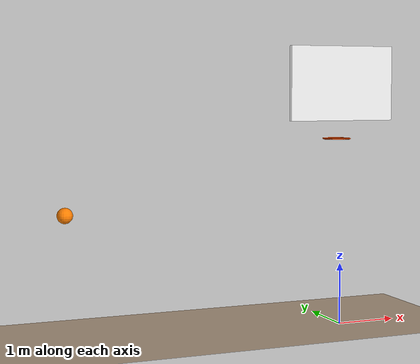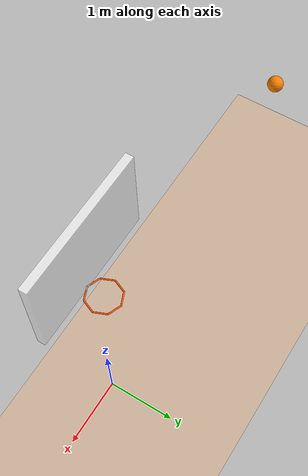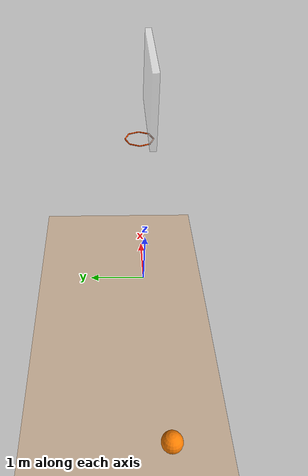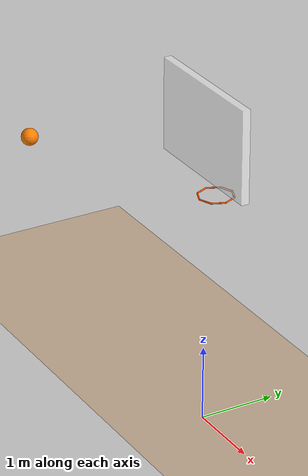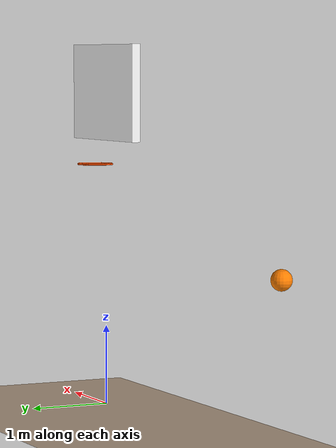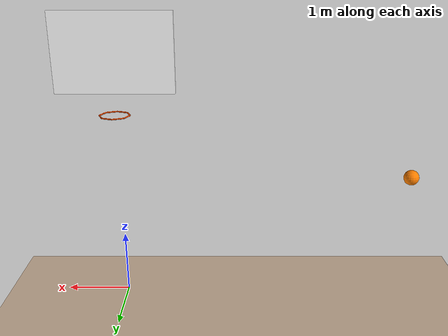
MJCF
<mujoco model="basketball_freethrow">
    <!-- Physics settings: 1ms timestep, RK4 for energy conservation -->
    <option gravity="0 0 -9.81" timestep="0.001" integrator="RK4">
        <flag contact="enable"/>
    </option>

    <compiler angle="degree" coordinate="local"/>

    <!-- Default contact parameters -->
    <default>
        <geom condim="4" friction="0.6 0.02 0.01" solref="0.02 1" solimp="0.9 0.95 0.001"/>
    </default>

    <worldbody>
        <!-- Ground plane -->
        <geom name="floor" type="plane" size="20 20 0.1" rgba="0.8 0.7 0.6 1"/>

        <!-- Backboard -->
        <body name="backboard" pos="0 0 3.95">
            <geom name="backboard" type="box" size="0.9 0.05 0.6" rgba="1 1 1 0.8"/>
        </body>

        <!-- Rim (modeled as 8 capsule segments for accurate collision) -->
        <!-- Rim center is 15cm forward of backboard, at 3.05m (10 feet) height -->
        <body name="rim" pos="0 0.15 3.05">
            <!-- 8 segments forming a circle, radius 0.2286m (9 inches) -->
            <geom name="rim_1" type="capsule" size="0.01" fromto="0.229 0 0 0.162 0.162 0" rgba="1 0.3 0 1" friction="0.8"/>
            <geom name="rim_2" type="capsule" size="0.01" fromto="0.162 0.162 0 0 0.229 0" rgba="1 0.3 0 1" friction="0.8"/>
            <geom name="rim_3" type="capsule" size="0.01" fromto="0 0.229 0 -0.162 0.162 0" rgba="1 0.3 0 1" friction="0.8"/>
            <geom name="rim_4" type="capsule" size="0.01" fromto="-0.162 0.162 0 -0.229 0 0" rgba="1 0.3 0 1" friction="0.8"/>
            <geom name="rim_5" type="capsule" size="0.01" fromto="-0.229 0 0 -0.162 -0.162 0" rgba="1 0.3 0 1" friction="0.8"/>
            <geom name="rim_6" type="capsule" size="0.01" fromto="-0.162 -0.162 0 0 -0.229 0" rgba="1 0.3 0 1" friction="0.8"/>
            <geom name="rim_7" type="capsule" size="0.01" fromto="0 -0.229 0 0.162 -0.162 0" rgba="1 0.3 0 1" friction="0.8"/>
            <geom name="rim_8" type="capsule" size="0.01" fromto="0.162 -0.162 0 0.229 0 0" rgba="1 0.3 0 1" friction="0.8"/>
        </body>

        <!-- Basketball with free joint (6 DOF: translation + rotation) -->
        <!-- Initial position at free throw line (4.57m from hoop) -->
        <body name="ball" pos="-4.57 0 2.0">
            <freejoint name="ball_joint"/>
            <geom name="ball_geom" type="sphere" size="0.12" mass="0.625"
                  friction="0.6 0.005 0.0001" rgba="1 0.5 0 1"/>
            <inertial pos="0 0 0" mass="0.625" diaginertia="0.003 0.003 0.003"/>
        </body>
    </worldbody>
</mujoco>
